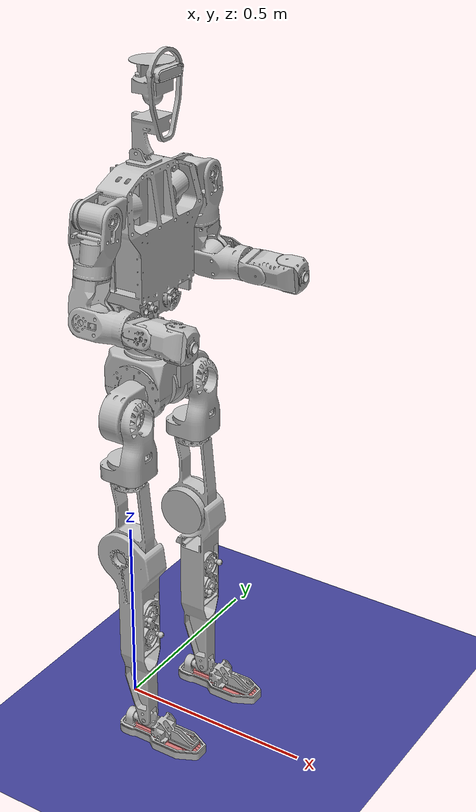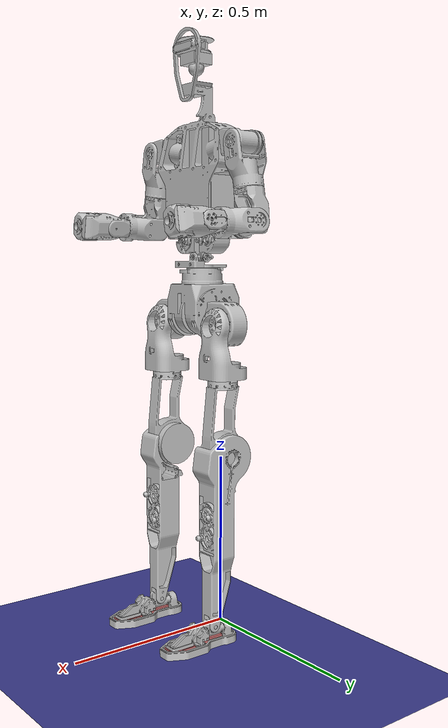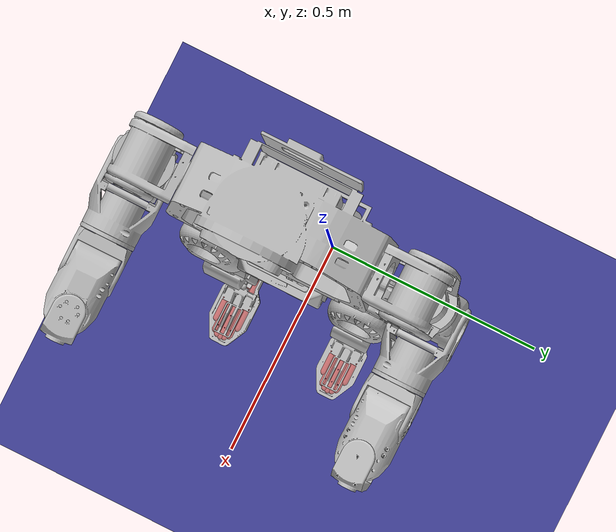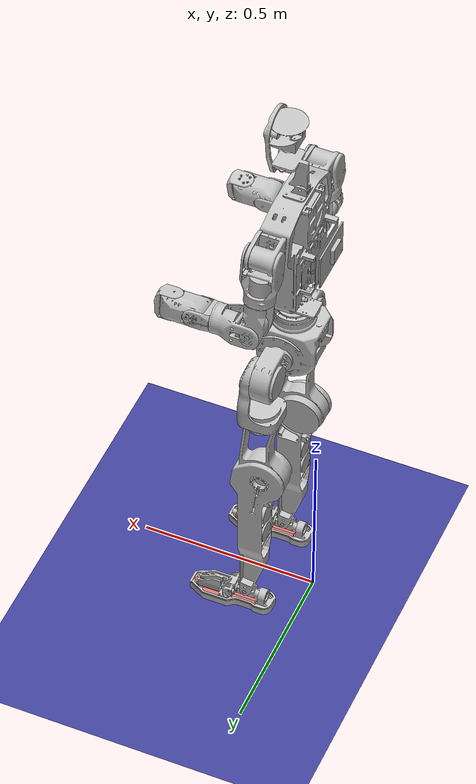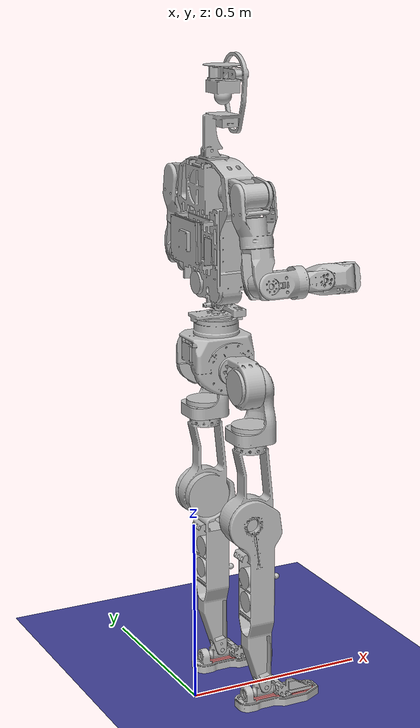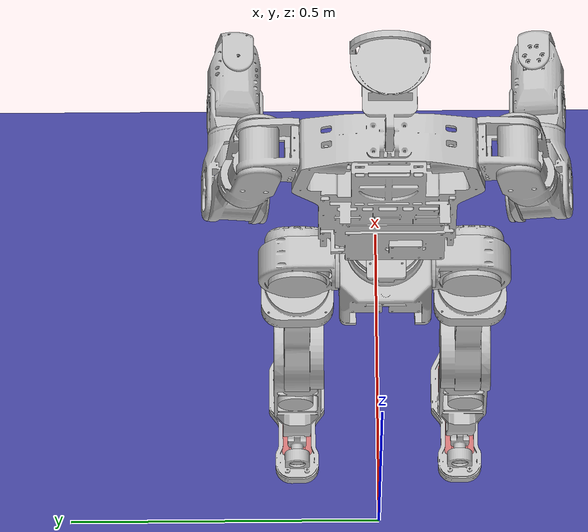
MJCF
<mujoco model="modelae_0624 scene">
  <include file="0624.xml"/>
  <visual>
    <headlight diffuse="0.6 0.6 0.6" ambient="0.3 0.3 0.3" specular="0 0 0"/>
    <rgba haze="0.15 0.25 0.35 1"/>
  </visual>
  <worldbody>
    <light pos="0 0 1.5" dir="0 0 -1" directional="true"/>
  </worldbody>
</mujoco>

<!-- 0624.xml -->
<mujoco model="0624wholebodyURDF">
  <compiler angle="radian" meshdir="meshes/" balanceinertia="true" autolimits="true"/>

  <option timestep="0.005" iterations="10" ls_iterations="20" solver="Newton" gravity="0 0 -9.81" integrator="implicitfast" ccd_iterations="50">
    <flag contact="enable" energy="enable" frictionloss="enable"/>
  </option>

  <size njmax="640" nconmax="500" nstack="500000"/>
  <visual>
    <headlight diffuse="0.6 0.6 0.6" ambient="0.3 0.3 0.3" specular="0 0 0"/>
    <rgba haze="0.15 0.25 0.35 1"/>
    <global azimuth="150" elevation="-20"/>
  </visual>

  <default>
    <pair solref="0.005 1" solimp="0.95 0.99 0.001"/>
    <joint stiffness="0" damping="0.1" frictionloss="0.02" armature="0.03"/>
  </default>

  <asset>
    <texture name="skybox" type="skybox" builtin="gradient" rgb1=".2 .3 .4" rgb2=".1 .15 0.2" width="512" height="3072"/>
    <texture type="2d" name="groundplane" builtin="checker" mark="edge" rgb1=".2 .2 .6" rgb2=".3 .3 .6"
             markrgb="0.0 0.0 0.0" width="800" height="800"/>
    <material name="groundplane" texture="groundplane" texuniform="true" texrepeat="5 5" reflectance="0"/>
    <mesh name="pelvis_link" content_type="model/stl" file="meshes/pelvis_link.STL"/>
    <mesh name="imu_in_pelvis_link" content_type="model/stl" file="meshes/imu_in_pelvis_link.STL"/>
    <mesh name="left_hip_pitch_link" content_type="model/stl" file="meshes/left_hip_pitch_link.STL"/>
    <mesh name="left_hip_roll_link" content_type="model/stl" file="meshes/left_hip_roll_link.STL"/>
    <mesh name="left_hip_yaw_link" content_type="model/stl" file="meshes/left_hip_yaw_link.STL"/>
    <mesh name="left_knee_link" content_type="model/stl" file="meshes/left_knee_link.STL"/>
    <mesh name="left_ankle_pitch_link" content_type="model/stl" file="meshes/left_ankle_pitch_link.STL"/>
    <mesh name="left_ankle_roll_link" content_type="model/stl" file="meshes/left_ankle_roll_link.STL"/>
    <mesh name="right_hip_pitch_link" content_type="model/stl" file="meshes/right_hip_pitch_link.STL"/>
    <mesh name="right_hip_roll_link" content_type="model/stl" file="meshes/right_hip_roll_link.STL"/>
    <mesh name="right_hip_yaw_link" content_type="model/stl" file="meshes/right_hip_yaw_link.STL"/>
    <mesh name="right_knee_link" content_type="model/stl" file="meshes/right_knee_link.STL"/>
    <mesh name="right_ankle_pitch_link" content_type="model/stl" file="meshes/right_ankle_pitch_link.STL"/>
    <mesh name="right_ankle_roll_link" content_type="model/stl" file="meshes/right_ankle_roll_link.STL"/>
    <mesh name="waist_yaw_link" content_type="model/stl" file="meshes/waist_yaw_link.STL"/>
    <mesh name="waist_roll_link" content_type="model/stl" file="meshes/waist_roll_link.STL"/>
    <mesh name="waist_pitch_link" content_type="model/stl" file="meshes/waist_pitch_link.STL"/>
    <mesh name="left_shoulder_pitch_link" content_type="model/stl" file="meshes/left_shoulder_pitch_link.STL"/>
    <mesh name="left_shoulder_roll_link" content_type="model/stl" file="meshes/left_shoulder_roll_link.STL"/>
    <mesh name="left_shoulder_yaw_link" content_type="model/stl" file="meshes/left_shoulder_yaw_link.STL"/>
    <mesh name="left_elbow_link" content_type="model/stl" file="meshes/left_elbow_link.STL"/>
    <mesh name="left_wrist_roll_link" content_type="model/stl" file="meshes/left_wrist_roll_link.STL"/>
    <mesh name="left_wrist_pitch_link" content_type="model/stl" file="meshes/left_wrist_pitch_link.STL"/>
    <mesh name="left_wrist_yaw_link" content_type="model/stl" file="meshes/left_wrist_yaw_link.STL"/>
    <mesh name="right_shoulder_pitch_link" content_type="model/stl" file="meshes/right_shoulder_pitch_link.STL"/>
    <mesh name="right_shoulder_roll_link" content_type="model/stl" file="meshes/right_shoulder_roll_link.STL"/>
    <mesh name="right_shoulder_yaw_link" content_type="model/stl" file="meshes/right_shoulder_yaw_link.STL"/>
    <mesh name="right_elbow_link" content_type="model/stl" file="meshes/right_elbow_link.STL"/>
    <mesh name="right_wrist_roll_link" content_type="model/stl" file="meshes/right_wrist_roll_link.STL"/>
    <mesh name="right_wrist_pitch_link" content_type="model/stl" file="meshes/right_wrist_pitch_link.STL"/>
    <mesh name="right_wrist_yaw_link" content_type="model/stl" file="meshes/right_wrist_yaw_link.STL"/>
  </asset>

  <worldbody>
    <light pos="0 0 3" dir="0 0 -1" directional="true" diffuse="0.6 0.6 0.6" specular=".3 .3 .3"/>
    <geom name="floor" type="plane" pos="0 0 0" size="0 0 0.05" material="groundplane"/>
    <body name="pelvis_link" pos="0 0 1.0">
      <joint name="root" type="free"/>
      <inertial pos="-0.004 0 0.038" quat="-0.04494823 0 0.9989893 0" mass="7.15" diaginertia="0.04418034 0.042 0.02181966"/>
      <geom type="mesh" contype="0" conaffinity="0" group="1" density="0" rgba="0.75294 0.75294 0.75294 1" mesh="pelvis_link"/>
      <geom name="pelvis_link_collision" type="mesh" rgba="0.75294 0.75294 0.75294 1" mesh="pelvis_link" contype="1" conaffinity="1" condim="1"/>
      <site name="imu_base" pos="0 0 0" size="0.01"/>
      <geom type="mesh" contype="0" conaffinity="0" group="1" density="0" rgba="0.75294 0.75294 0.75294 1" mesh="imu_in_pelvis_link"/>
      <body name="left_hip_pitch_link" pos="0.0766 0.0686 -0.0676" quat="1 0 0 0">
        <inertial pos="0.003 0.063 -0.024" quat="0.8314696 -0.5555702 0 0" mass="2.333" diaginertia="0.015 0.01365685 0.002343146"/>
        <joint name="left_hip_pitch_joint" pos="0 0 0" axis="0 1 0" range="-2.88 2.618" armature="0.01017752" actuatorfrcrange="-235 235" damping="0.01" frictionloss="0.05"/>
        <geom type="mesh" contype="0" conaffinity="0" group="1" density="0" rgba="0.75294 0.75294 0.75294 1" mesh="left_hip_pitch_link"/>
        <geom name="left_hip_pitch_link_collision" type="mesh" rgba="0.75294 0.75294 0.75294 1" mesh="left_hip_pitch_link" contype="16" conaffinity="16" condim="1"/>
        <body name="left_hip_roll_link" pos="0.00675 0.065 -0.027" quat="1 0 0 0">
          <inertial pos="0.026 0 -0.105" quat="-0.08708231 0 0.9962011 0" mass="2.854" diaginertia="0.04105705 0.041 0.00594295"/>
          <joint name="left_hip_roll_joint" pos="0 0 0" axis="1 0 0" range="-0.175 2.617" armature="0.02510193" actuatorfrcrange="-235 235" damping="0.01" frictionloss="0.05"/>
          <geom type="mesh" contype="0" conaffinity="0" group="1" density="0" rgba="0.75294 0.75294 0.75294 1" mesh="left_hip_roll_link"/>
          <geom name="left_hip_roll_link_collision" type="mesh" rgba="0.75294 0.75294 0.75294 1" mesh="left_hip_roll_link" contype="1" conaffinity="31" condim="1"/>
          <body name="left_hip_yaw_link" pos="0.01675 -0.0001 -0.12525" quat="1 0 0 0">
            <inertial pos="-0.006 -0.007 -0.212" quat="0.02395095 -0.6747399 0.7376603 0.003108807" mass="3.256" diaginertia="0.1672383 0.1651393 0.004622412"/>
            <joint name="left_hip_yaw_joint" pos="0 0 0" axis="0 0 1" range="-1.57 1.57" armature="0.01017752" actuatorfrcrange="-150 150" damping="0.01" frictionloss="0.05"/>
            <geom type="mesh" contype="0" conaffinity="0" group="1" density="0" rgba="0.75294 0.75294 0.75294 1" mesh="left_hip_yaw_link"/>
            <geom name="left_hip_yaw_link_collision" type="mesh" rgba="0.75294 0.75294 0.75294 1" mesh="left_hip_yaw_link" contype="1" conaffinity="31" condim="1"/>
            <body name="left_knee_link" pos="-0.009 -0.01035 -0.24375" quat="1 0 0 0">
              <inertial pos="0.035 0.012 -0.183" quat="-0.07213949 -0.4707565 0.8791455 0.01694985" mass="3.727" diaginertia="0.1855931 0.1812863 0.006120552"/>
              <joint name="left_knee_joint" pos="0 0 0" axis="0 1 0" range="0 2.617" armature="0.02510193" actuatorfrcrange="-235 235" damping="0.01" frictionloss="0.05"/>
              <geom type="mesh" contype="0" conaffinity="0" group="1" density="0" rgba="0.75294 0.75294 0.75294 1" mesh="left_knee_link"/>
              <geom name="left_knee_link_collision" type="mesh" rgba="0.75294 0.75294 0.75294 1" mesh="left_knee_link" contype="1" conaffinity="31" condim="1"/>
              <body name="left_ankle_pitch_link" pos="0.048044 0.0092998 -0.475" quat="1 0 0 0">
                <inertial pos="-0.005 0 -0.012" quat="-0.4860128 -0.5136064 0.5136065 0.4860128" mass="0.415" diaginertia="0.0002142 0.0001947975 6.416946e-05"/>
                <joint name="left_ankle_pitch_joint" pos="0 0 0" axis="0 1 0" range="-0.908 0.524" armature="0.00721945" actuatorfrcrange="-55 55" damping="0.01" frictionloss="0.05"/>
                <geom type="mesh" contype="0" conaffinity="0" group="1" density="0" rgba="0.75294 0.75294 0.75294 1" mesh="left_ankle_pitch_link"/>
                <geom name="left_ankle_pitch_link_collision" type="mesh" rgba="0.75294 0.75294 0.75294 1" mesh="left_ankle_pitch_link" contype="1" conaffinity="31" condim="1"/>
                <body name="left_ankle_roll_link" pos="0 -0.00034979 -0.016" quat="1 0 0 0">
                  <inertial pos="0.046 0 -0.015" quat="0.6205832 0 -0.7841406 0" mass="0.999" diaginertia="0.005236068 0.005 0.000763932"/>
                  <joint name="left_ankle_roll_joint" pos="0 0 0" axis="1 0 0" range="-0.349 0.349" armature="0.00721945" actuatorfrcrange="-55 55" damping="0.01" frictionloss="0.05"/>
                  <geom type="mesh" contype="0" conaffinity="0" group="1" density="0" rgba="0.75294 0.75294 0.75294 1" mesh="left_ankle_roll_link"/>
                  <geom name="left_foot1" type="capsule" size="0.01" fromto="0.1155 -0.026 -0.028 0.0655 -0.026 -0.028" contype="1" conaffinity="1" condim="3" priority="1" friction="0.6 0.6 0.6" rgba="0.9 0.3 0.3 0.6"/>
                  <geom name="left_foot2" type="capsule" size="0.01" fromto="-0.0285 -0.0173 -0.028 0.1385 -0.0173 -0.028" contype="1" conaffinity="1" condim="3" priority="1" friction="0.6 0.6 0.6" rgba="0.9 0.3 0.3 0.6"/>
                  <geom name="left_foot3" type="capsule" size="0.01" fromto="-0.0365 -0.0087 -0.028 0.1455 -0.0087 -0.028" contype="1" conaffinity="1" condim="3" priority="1" friction="0.6 0.6 0.6" rgba="0.9 0.3 0.3 0.6"/>
                  <geom name="left_foot4" type="capsule" size="0.01" fromto="-0.0385 0 -0.028 0.1475 0 -0.028" contype="1" conaffinity="1" condim="3" priority="1" friction="0.6 0.6 0.6" rgba="0.9 0.3 0.3 0.6"/>
                  <geom name="left_foot5" type="capsule" size="0.01" fromto="-0.0365 0.0087 -0.028 0.1455 0.0087 -0.028" contype="1" conaffinity="1" condim="3" priority="1" friction="0.6 0.6 0.6" rgba="0.9 0.3 0.3 0.6"/>
                  <geom name="left_foot6" type="capsule" size="0.01" fromto="-0.0285 0.0173 -0.028 0.1385 0.0173 -0.028" contype="1" conaffinity="1" condim="3" priority="1" friction="0.6 0.6 0.6" rgba="0.9 0.3 0.3 0.6"/>
                  <geom name="left_foot7" type="capsule" size="0.01" fromto="0.1155 0.026 -0.028 0.0655 0.026 -0.028" contype="1" conaffinity="1" condim="3" priority="1" friction="0.6 0.6 0.6" rgba="0.9 0.3 0.3 0.6"/>
                  <site name="left_foot" pos="0.043 0 -0.028" size="0.005"/>

                </body>
              </body>
            </body>
          </body>
        </body>
      </body>
      <body name="right_hip_pitch_link" pos="0.0766 -0.0686 -0.0676" quat="1 0 0 0">
        <inertial pos="0.003 -0.063 -0.024" quat="0.8314696 0.5555702 0 0" mass="2.334" diaginertia="0.015 0.01365685 0.002343146"/>
        <joint name="right_hip_pitch_joint" pos="0 0 0" axis="0 1 0" range="-2.88 2.618" armature="0.01017752" actuatorfrcrange="-235 235" damping="0.01" frictionloss="0.05"/>
        <geom type="mesh" contype="0" conaffinity="0" group="1" density="0" rgba="0.75294 0.75294 0.75294 1" mesh="right_hip_pitch_link"/>
        <geom name="right_hip_pitch_link_collision" type="mesh" rgba="0.75294 0.75294 0.75294 1" mesh="right_hip_pitch_link" contype="16" conaffinity="16" condim="1"/>
        <body name="right_hip_roll_link" pos="0.00675 -0.065 -0.027" quat="1 0 0 0">
          <inertial pos="0.026 0 -0.105" quat="-0.08708231 0 0.9962011 0" mass="2.854" diaginertia="0.04105705 0.041 0.00594295"/>
          <joint name="right_hip_roll_joint" pos="0 0 0" axis="1 0 0" range="-2.617 0.175" armature="0.02510193" actuatorfrcrange="-235 235" damping="0.01" frictionloss="0.05"/>
          <geom type="mesh" contype="0" conaffinity="0" group="1" density="0" rgba="0.75294 0.75294 0.75294 1" mesh="right_hip_roll_link"/>
          <geom name="right_hip_roll_link_collision" type="mesh" rgba="0.75294 0.75294 0.75294 1" mesh="right_hip_roll_link" contype="1" conaffinity="31" condim="1"/>
          <body name="right_hip_yaw_link" pos="0.01675 0 -0.12525" quat="1 0 0 0">
            <inertial pos="-0.006 0.007 -0.212" quat="0.02395095 0.6747399 0.7376603 -0.003108807" mass="3.256" diaginertia="0.1672383 0.1651393 0.004622412"/>
            <joint name="right_hip_yaw_joint" pos="0 0 0" axis="0 0 1" range="-1.57 1.57" armature="0.01017752" actuatorfrcrange="-150 150" damping="0.01" frictionloss="0.05"/>
            <geom type="mesh" contype="0" conaffinity="0" group="1" density="0" rgba="0.75294 0.75294 0.75294 1" mesh="right_hip_yaw_link"/>
            <geom name="right_hip_yaw_link_collision" type="mesh" rgba="0.75294 0.75294 0.75294 1" mesh="right_hip_yaw_link" contype="1" conaffinity="31" condim="1"/>
            <body name="right_knee_link" pos="-0.009 0.01035 -0.24375" quat="1 0 0 0">
              <inertial pos="0.035 -0.012 -0.183" quat="0.878582 -0.0169415 0.07172199 -0.4718714" mass="3.727" diaginertia="0.1865809 0.1822768 0.006142277"/>
              <joint name="right_knee_joint" pos="0 0 0" axis="0 1 0" range="0 2.617" armature="0.02510193" actuatorfrcrange="-235 235" damping="0.01" frictionloss="0.05"/>
              <geom type="mesh" contype="0" conaffinity="0" group="1" density="0" rgba="0.75294 0.75294 0.75294 1" mesh="right_knee_link"/>
              <geom name="right_knee_link_collision" type="mesh" rgba="0.75294 0.75294 0.75294 1" mesh="right_knee_link" contype="1" conaffinity="31" condim="1"/>
              <body name="right_ankle_pitch_link" pos="0.048044 -0.00895 -0.475" quat="1 0 0 0">
                <inertial pos="-0.005 0 -0.012" quat="-0.4860116 -0.5136076 0.5136076 0.4860116" mass="0.415" diaginertia="0.00021421 0.0001948176 6.420042e-05"/>
                <joint name="right_ankle_pitch_joint" pos="0 0 0" axis="0 1 0" range="-0.908 0.524" armature="0.00721945" actuatorfrcrange="-55 55" damping="0.01" frictionloss="0.05"/>
                <geom type="mesh" contype="0" conaffinity="0" group="1" density="0" rgba="0.75294 0.75294 0.75294 1" mesh="right_ankle_pitch_link"/>
                <geom name="right_ankle_pitch_link_collision" type="mesh" rgba="0.75294 0.75294 0.75294 1" mesh="right_ankle_pitch_link" contype="1" conaffinity="31" condim="1"/>
                <body name="right_ankle_roll_link" pos="0 0 -0.016" quat="1 0 0 0">
                  <inertial pos="0.046 0 -0.015" quat="0.6205832 0 -0.7841406 0" mass="0.999" diaginertia="0.005236068 0.005 0.000763932"/>
                  <joint name="right_ankle_roll_joint" pos="0 0 0" axis="1 0 0" range="-0.349 0.349" armature="0.00721945" actuatorfrcrange="-55 55" damping="0.01" frictionloss="0.05"/>
                  <geom type="mesh" contype="0" conaffinity="0" group="1" density="0" rgba="0.75294 0.75294 0.75294 1" mesh="right_ankle_roll_link"/>
                  <geom name="right_foot1" type="capsule" size="0.01" fromto="0.1155 -0.026 -0.028 0.0655 -0.026 -0.028" contype="1" conaffinity="1" condim="3" priority="1" friction="0.6 0.6 0.6" rgba="0.9 0.3 0.3 0.6"/>
                  <geom name="right_foot2" type="capsule" size="0.01" fromto="-0.0285 -0.0173 -0.028 0.1385 -0.0173 -0.028" contype="1" conaffinity="1" condim="3" priority="1" friction="0.6 0.6 0.6" rgba="0.9 0.3 0.3 0.6"/>
                  <geom name="right_foot3" type="capsule" size="0.01" fromto="-0.0365 -0.0087 -0.028 0.1455 -0.0087 -0.028" contype="1" conaffinity="1" condim="3" priority="1" friction="0.6 0.6 0.6" rgba="0.9 0.3 0.3 0.6"/>
                  <geom name="right_foot4" type="capsule" size="0.01" fromto="-0.0385 0 -0.028 0.1475 0 -0.028" contype="1" conaffinity="1" condim="3" priority="1" friction="0.6 0.6 0.6" rgba="0.9 0.3 0.3 0.6"/>
                  <geom name="right_foot5" type="capsule" size="0.01" fromto="-0.0365 0.0087 -0.028 0.1455 0.0087 -0.028" contype="1" conaffinity="1" condim="3" priority="1" friction="0.6 0.6 0.6" rgba="0.9 0.3 0.3 0.6"/>
                  <geom name="right_foot6" type="capsule" size="0.01" fromto="-0.0285 0.0173 -0.028 0.1385 0.0173 -0.028" contype="1" conaffinity="1" condim="3" priority="1" friction="0.6 0.6 0.6" rgba="0.9 0.3 0.3 0.6"/>
                  <geom name="right_foot7" type="capsule" size="0.01" fromto="0.1155 0.026 -0.028 0.0655 0.026 -0.028" contype="1" conaffinity="1" condim="3" priority="1" friction="0.6 0.6 0.6" rgba="0.9 0.3 0.3 0.6"/>
                  <site name="right_foot" pos="0.043 0 -0.028" size="0.005"/>

                </body>
              </body>
            </body>
          </body>
        </body>
      </body>
      <body name="waist_yaw_link" pos="0.0696 0 0.0409" quat="1 0 0 0">
        <inertial pos="0.005 0 0.034" quat="0.7071068 0 -0.7071068 0" mass="0.34" diaginertia="0.001 0.001 0.001"/>
        <joint name="waist_yaw_joint" pos="0 0 0" axis="0 0 1" range="-2.618 2.618" armature="0.01017752" actuatorfrcrange="-150 150" damping="0.01" frictionloss="0.05"/>
        <geom type="mesh" contype="0" conaffinity="0" group="1" density="0" rgba="0.75294 0.75294 0.75294 1" mesh="waist_yaw_link"/>
        <geom name="waist_yaw_link_collision" type="mesh" rgba="0.75294 0.75294 0.75294 1" mesh="waist_yaw_link" contype="2" conaffinity="2" condim="1"/>
        <body name="waist_roll_link" pos="-0.002 0 0.0525" quat="1 0 0 0">
          <inertial pos="0.017 0 0.005" quat="0.7071068 5.240447e-09 -0.7071068 5.240447e-09" mass="0.308" diaginertia="2.6154e-05 2.362e-05 5.7185e-06"/>
          <joint name="waist_roll_joint" pos="0 0 0" axis="1 0 0" range="-0.0349 0.0349" armature="0.00721945" actuatorfrcrange="-25 25" damping="0.01" frictionloss="0.05"/>
          <geom type="mesh" contype="0" conaffinity="0" group="1" density="0" rgba="0.75294 0.75294 0.75294 1" mesh="waist_roll_link"/>
          <geom name="waist_roll_link_collision" type="mesh" rgba="0.75294 0.75294 0.75294 1" mesh="waist_roll_link" contype="4" conaffinity="4" condim="1"/>
          <body name="waist_pitch_link" pos="0 0 0" quat="1 0 0 0">
            <inertial pos="0.004 0.003 0.216" quat="0.009259429 -0.001195696 0.9999455 0.004669881" mass="15.372" diaginertia="1.007315 0.9430745 0.08861041"/>
            <joint name="waist_pitch_joint" pos="0 0 0" axis="0 1 0" range="-0.0524 0.0524" armature="0.00721945" actuatorfrcrange="-25 25" damping="0.01" frictionloss="0.05"/>
            <geom type="mesh" contype="0" conaffinity="0" group="1" density="0" rgba="0.75294 0.75294 0.75294 1" mesh="waist_pitch_link"/>
            <geom name="waist_pitch_link_collision" type="mesh" rgba="0.75294 0.75294 0.75294 1" mesh="waist_pitch_link" contype="8" conaffinity="8" condim="1"/>
            <body name="left_shoulder_pitch_link" pos="0.007 0.13588 0.30771" quat="0.9961948 0.08715429 0 0">
              <inertial pos="0 0.052 -0.01" quat="0.545231 -0.4502478 -0.4502478 -0.545231" mass="1.573" diaginertia="0.006192582 0.005 0.0008074176"/>
              <joint name="left_shoulder_pitch_joint" pos="0 0 0" axis="0 1 0" range="-3.14 3.14" armature="0.003609725" actuatorfrcrange="-90 90" damping="0.01" frictionloss="0.05"/>
              <geom type="mesh" contype="0" conaffinity="0" group="1" density="0" rgba="0.75294 0.75294 0.75294 1" mesh="left_shoulder_pitch_link"/>
              <geom name="left_shoulder_pitch_link_collision" type="mesh" rgba="0.75294 0.75294 0.75294 1" mesh="left_shoulder_pitch_link" contype="1" conaffinity="31" condim="1"/>
              <body name="left_shoulder_roll_link" pos="0.0015 0.0545 -0.010182" quat="1 0 0 0">
                <inertial pos="-0.002 0 -0.08" quat="1 0 0 0" mass="1.075" diaginertia="0.009 0.009 0.001"/>
                <joint name="left_shoulder_roll_joint" pos="0 0 0" axis="1 0 0" range="-0.262 3.14" armature="0.003609725" actuatorfrcrange="-90 90" damping="0.01" frictionloss="0.05"/>
                <geom type="mesh" contype="0" conaffinity="0" group="1" density="0" rgba="0.75294 0.75294 0.75294 1" mesh="left_shoulder_roll_link"/>
                <geom name="left_shoulder_roll_link_collision" type="mesh" rgba="0.75294 0.75294 0.75294 1" mesh="left_shoulder_roll_link" contype="1" conaffinity="31" condim="1"/>
                <body name="left_shoulder_yaw_link" pos="-0.001 0 -0.126" quat="1 0 0 0">
                  <inertial pos="0.008 -0.002 -0.084" quat="-0.08035093 0 0.9967666 0" mass="0.776" diaginertia="0.007162278 0.006 0.0008377223"/>
                  <joint name="left_shoulder_yaw_joint" pos="0 0 0" axis="0 0 1" range="-3.14 3.14" armature="0.003609725" actuatorfrcrange="-50 50" damping="0.01" frictionloss="0.05"/>
                  <geom type="mesh" contype="0" conaffinity="0" group="1" density="0" rgba="0.75294 0.75294 0.75294 1" mesh="left_shoulder_yaw_link"/>
                  <geom name="left_shoulder_yaw_link_collision" type="mesh" rgba="0.75294 0.75294 0.75294 1" mesh="left_shoulder_yaw_link" contype="1" conaffinity="31" condim="1"/>
                  <body name="left_elbow_link" pos="0.0076328 -0.0005 -0.095865" quat="1 0 0 0">
                    <inertial pos="0.067 -0.004 0.001" quat="0.7071068 0 -0.7071068 0" mass="1.036" diaginertia="0.006 0.006 0.001"/>
                    <joint name="left_elbow_joint" pos="0 0 0" axis="0 1 0" range="-1.05 2.09" armature="0.003609725" actuatorfrcrange="-50 50" damping="0.01" frictionloss="0.05"/>
                    <geom type="mesh" contype="0" conaffinity="0" group="1" density="0" rgba="0.75294 0.75294 0.75294 1" mesh="left_elbow_link"/>
                    <geom name="left_elbow_link_collision" type="mesh" rgba="0.75294 0.75294 0.75294 1" mesh="left_elbow_link" contype="1" conaffinity="31" condim="1"/>
                    <body name="left_wrist_roll_link" pos="0.10837 -0.002 0.0013652" quat="1 0 0 0">
                      <inertial pos="0.018 -0.002 0" quat="0.5184612 -0.4806292 -0.5184599 -0.4810333" mass="0.229" diaginertia="0.00025783 0.0002254131 0.0001311569"/>
                      <joint name="left_wrist_roll_joint" pos="0 0 0" axis="1 0 0" range="-3.14 3.14" armature="0.003609725" actuatorfrcrange="-25 25" damping="0.01" frictionloss="0.05"/>
                      <geom type="mesh" contype="0" conaffinity="0" group="1" density="0" rgba="0.75294 0.75294 0.75294 1" mesh="left_wrist_roll_link"/>
                      <geom name="left_wrist_roll_link_collision" type="mesh" rgba="0.75294 0.75294 0.75294 1" mesh="left_wrist_roll_link" contype="1" conaffinity="31" condim="1"/>
                      <body name="left_wrist_pitch_link" pos="0.049 0 0" quat="1 0 0 0">
                        <inertial pos="0.032 0.001 0" quat="0.7071068 0 -0.7071068 0" mass="1.669" diaginertia="0.004 0.004 0.001"/>
                        <joint name="left_wrist_pitch_joint" pos="0 0 0" axis="0 1 0" range="-0.785 0.785" armature="0.00425" actuatorfrcrange="-25 25" damping="0.01" frictionloss="0.05"/>
                        <geom type="mesh" contype="0" conaffinity="0" group="1" density="0" rgba="0.75294 0.75294 0.75294 1" mesh="left_wrist_pitch_link"/>
                        <geom name="left_wrist_pitch_link_collision" type="mesh" rgba="0.75294 0.75294 0.75294 1" mesh="left_wrist_pitch_link" contype="1" conaffinity="31" condim="1"/>
                        <body name="left_wrist_yaw_link" pos="0.064 0.001 0.001" quat="1 0 0 0">
                          <inertial pos="0.025 0 0" quat="0.9534378 -4.13465e-07 0.3015898 -1.087079e-05" mass="0.12" diaginertia="8.129253e-05 7.4877e-05 4.289747e-05"/>
                          <joint name="left_wrist_yaw_joint" pos="0 0 0" axis="0 0 1" range="-1.57 1.57" armature="0.00425" actuatorfrcrange="-25 25" damping="0.01" frictionloss="0.05"/>
                          <geom type="mesh" contype="0" conaffinity="0" group="1" density="0" rgba="0.75294 0.75294 0.75294 1" mesh="left_wrist_yaw_link"/>
                          <geom name="left_wrist_yaw_link_collision" type="mesh" rgba="0.75294 0.75294 0.75294 1" mesh="left_wrist_yaw_link" contype="1" conaffinity="31" condim="1"/>

                        </body>
                      </body>
                    </body>
                  </body>
                </body>
              </body>
            </body>
            <body name="right_shoulder_pitch_link" pos="0.007 -0.13588 0.30771" quat="0.9961948 -0.08715429 0 0">
              <inertial pos="0 -0.052 -0.01" quat="-0.4502478 0.545231 0.545231 0.4502478" mass="1.573" diaginertia="0.006192582 0.005 0.0008074176"/>
              <joint name="right_shoulder_pitch_joint" pos="0 0 0" axis="0 1 0" range="-3.14 3.14" armature="0.003609725" actuatorfrcrange="-90 90" damping="0.01" frictionloss="0.05"/>
              <geom type="mesh" contype="0" conaffinity="0" group="1" density="0" rgba="0.75294 0.75294 0.75294 1" mesh="right_shoulder_pitch_link"/>
              <geom name="right_shoulder_pitch_link_collision" type="mesh" rgba="0.75294 0.75294 0.75294 1" mesh="right_shoulder_pitch_link" contype="1" conaffinity="31" condim="1"/>
              <body name="right_shoulder_roll_link" pos="0.0015 -0.0545 -0.010182" quat="1 0 0 0">
                <inertial pos="-0.002 0 -0.08" quat="1 0 0 0" mass="1.075" diaginertia="0.009 0.009 0.001"/>
                <joint name="right_shoulder_roll_joint" pos="0 0 0" axis="1 0 0" range="-3.14 0.262" armature="0.003609725" actuatorfrcrange="-90 90" damping="0.01" frictionloss="0.05"/>
                <geom type="mesh" contype="0" conaffinity="0" group="1" density="0" rgba="0.75294 0.75294 0.75294 1" mesh="right_shoulder_roll_link"/>
                <geom name="right_shoulder_roll_link_collision" type="mesh" rgba="0.75294 0.75294 0.75294 1" mesh="right_shoulder_roll_link" contype="1" conaffinity="31" condim="1"/>
                <body name="right_shoulder_yaw_link" pos="-0.001 0 -0.126" quat="1 0 0 0">
                  <inertial pos="0.008 0.002 -0.084" quat="-0.08035093 0 0.9967666 0" mass="0.776" diaginertia="0.007162278 0.006 0.0008377223"/>
                  <joint name="right_shoulder_yaw_joint" pos="0 0 0" axis="0 0 1" range="-3.14 3.14" armature="0.003609725" actuatorfrcrange="-50 50" damping="0.01" frictionloss="0.05"/>
                  <geom type="mesh" contype="0" conaffinity="0" group="1" density="0" rgba="0.75294 0.75294 0.75294 1" mesh="right_shoulder_yaw_link"/>
                  <geom name="right_shoulder_yaw_link_collision" type="mesh" rgba="0.75294 0.75294 0.75294 1" mesh="right_shoulder_yaw_link" contype="1" conaffinity="31" condim="1"/>
                  <body name="right_elbow_link" pos="0.01 -0.0005 -0.0945" quat="1 0 0 0">
                    <inertial pos="0.064 0.003 0" quat="0.7071068 0 -0.7071068 0" mass="1.036" diaginertia="0.006 0.006 0.001"/>
                    <joint name="right_elbow_joint" pos="0 0 0" axis="0 1 0" range="-1.05 2.09" armature="0.003609725" actuatorfrcrange="-50 50" damping="0.01" frictionloss="0.05"/>
                    <geom type="mesh" contype="0" conaffinity="0" group="1" density="0" rgba="0.75294 0.75294 0.75294 1" mesh="right_elbow_link"/>
                    <geom name="right_elbow_link_collision" type="mesh" rgba="0.75294 0.75294 0.75294 1" mesh="right_elbow_link" contype="1" conaffinity="31" condim="1"/>
                    <body name="right_wrist_roll_link" pos="0.106 0.001 0" quat="1 0 0 0">
                      <inertial pos="0.018 0.002 0" quat="0.5184601 0.4810331 -0.5184609 0.4806293" mass="0.229" diaginertia="0.00025783 0.0002254131 0.0001311569"/>
                      <joint name="right_wrist_roll_joint" pos="0 0 0" axis="1 0 0" range="-3.14 3.14" armature="0.003609725" actuatorfrcrange="-25 25" damping="0.01" frictionloss="0.05"/>
                      <geom type="mesh" contype="0" conaffinity="0" group="1" density="0" rgba="0.75294 0.75294 0.75294 1" mesh="right_wrist_roll_link"/>
                      <geom name="right_wrist_roll_link_collision" type="mesh" rgba="0.75294 0.75294 0.75294 1" mesh="right_wrist_roll_link" contype="1" conaffinity="31" condim="1"/>
                      <body name="right_wrist_pitch_link" pos="0.049 0 0" quat="1 0 0 0">
                        <inertial pos="0.032 -0.001 0" quat="0.7071068 0 -0.7071068 0" mass="1.669" diaginertia="0.004 0.004 0.001"/>
                        <joint name="right_wrist_pitch_joint" pos="0 0 0" axis="0 1 0" range="-0.785 0.785" armature="0.00425" actuatorfrcrange="-25 25" damping="0.01" frictionloss="0.05"/>
                        <geom type="mesh" contype="0" conaffinity="0" group="1" density="0" rgba="0.75294 0.75294 0.75294 1" mesh="right_wrist_pitch_link"/>
                        <geom name="right_wrist_pitch_link_collision" type="mesh" rgba="0.75294 0.75294 0.75294 1" mesh="right_wrist_pitch_link" contype="1" conaffinity="31" condim="1"/>
                        <body name="right_wrist_yaw_link" pos="0.064 -0.001 -0.001" quat="1 0 0 0">
                          <inertial pos="0.025 0 0" quat="0.9534378 -4.246374e-07 -0.3015898 1.11514e-05" mass="0.12" diaginertia="8.129253e-05 7.4877e-05 4.289747e-05"/>
                          <joint name="right_wrist_yaw_joint" pos="0 0 0" axis="0 0 1" range="-1.57 1.57" armature="0.00425" actuatorfrcrange="-25 25" damping="0.01" frictionloss="0.05"/>
                          <geom type="mesh" contype="0" conaffinity="0" group="1" density="0" rgba="0.75294 0.75294 0.75294 1" mesh="right_wrist_yaw_link"/>
                          <geom name="right_wrist_yaw_link_collision" type="mesh" rgba="0.75294 0.75294 0.75294 1" mesh="right_wrist_yaw_link" contype="1" conaffinity="31" condim="1"/>

                        </body>
                      </body>
                    </body>
                  </body>
                </body>
              </body>
            </body>
          </body>
        </body>
      </body>
    </body>
  </worldbody>

  <sensor>
    <framequat name="orientation" objtype="site" noise="0.001" objname="imu_base"/>
    <accelerometer name="linear-acceleration" site="imu_base" noise="0.005" cutoff="157"/>
    <gyro name="angular-velocity" site="imu_base" noise="0.005" cutoff="34.9"/>
    <gyro name="imu_ang_vel" site="imu_base"/>
    <velocimeter name="imu_lin_vel" site="imu_base"/>
    <jointpos name="q_left_hip_pitch_joint" joint="left_hip_pitch_joint"/>
    <jointvel name="dq_left_hip_pitch_joint" joint="left_hip_pitch_joint"/>
    <jointpos name="q_left_hip_roll_joint" joint="left_hip_roll_joint"/>
    <jointvel name="dq_left_hip_roll_joint" joint="left_hip_roll_joint"/>
    <jointpos name="q_left_hip_yaw_joint" joint="left_hip_yaw_joint"/>
    <jointvel name="dq_left_hip_yaw_joint" joint="left_hip_yaw_joint"/>
    <jointpos name="q_left_knee_joint" joint="left_knee_joint"/>
    <jointvel name="dq_left_knee_joint" joint="left_knee_joint"/>
    <jointpos name="q_left_ankle_pitch_joint" joint="left_ankle_pitch_joint"/>
    <jointvel name="dq_left_ankle_pitch_joint" joint="left_ankle_pitch_joint"/>
    <jointpos name="q_left_ankle_roll_joint" joint="left_ankle_roll_joint"/>
    <jointvel name="dq_left_ankle_roll_joint" joint="left_ankle_roll_joint"/>
    <jointpos name="q_right_hip_pitch_joint" joint="right_hip_pitch_joint"/>
    <jointvel name="dq_right_hip_pitch_joint" joint="right_hip_pitch_joint"/>
    <jointpos name="q_right_hip_roll_joint" joint="right_hip_roll_joint"/>
    <jointvel name="dq_right_hip_roll_joint" joint="right_hip_roll_joint"/>
    <jointpos name="q_right_hip_yaw_joint" joint="right_hip_yaw_joint"/>
    <jointvel name="dq_right_hip_yaw_joint" joint="right_hip_yaw_joint"/>
    <jointpos name="q_right_knee_joint" joint="right_knee_joint"/>
    <jointvel name="dq_right_knee_joint" joint="right_knee_joint"/>
    <jointpos name="q_right_ankle_pitch_joint" joint="right_ankle_pitch_joint"/>
    <jointvel name="dq_right_ankle_pitch_joint" joint="right_ankle_pitch_joint"/>
    <jointpos name="q_right_ankle_roll_joint" joint="right_ankle_roll_joint"/>
    <jointvel name="dq_right_ankle_roll_joint" joint="right_ankle_roll_joint"/>
    <jointpos name="q_waist_yaw_joint" joint="waist_yaw_joint"/>
    <jointvel name="dq_waist_yaw_joint" joint="waist_yaw_joint"/>
    <jointpos name="q_waist_roll_joint" joint="waist_roll_joint"/>
    <jointvel name="dq_waist_roll_joint" joint="waist_roll_joint"/>
    <jointpos name="q_waist_pitch_joint" joint="waist_pitch_joint"/>
    <jointvel name="dq_waist_pitch_joint" joint="waist_pitch_joint"/>
    <jointpos name="q_left_shoulder_pitch_joint" joint="left_shoulder_pitch_joint"/>
    <jointvel name="dq_left_shoulder_pitch_joint" joint="left_shoulder_pitch_joint"/>
    <jointpos name="q_left_shoulder_roll_joint" joint="left_shoulder_roll_joint"/>
    <jointvel name="dq_left_shoulder_roll_joint" joint="left_shoulder_roll_joint"/>
    <jointpos name="q_left_shoulder_yaw_joint" joint="left_shoulder_yaw_joint"/>
    <jointvel name="dq_left_shoulder_yaw_joint" joint="left_shoulder_yaw_joint"/>
    <jointpos name="q_left_elbow_joint" joint="left_elbow_joint"/>
    <jointvel name="dq_left_elbow_joint" joint="left_elbow_joint"/>
    <jointpos name="q_left_wrist_roll_joint" joint="left_wrist_roll_joint"/>
    <jointvel name="dq_left_wrist_roll_joint" joint="left_wrist_roll_joint"/>
    <jointpos name="q_left_wrist_pitch_joint" joint="left_wrist_pitch_joint"/>
    <jointvel name="dq_left_wrist_pitch_joint" joint="left_wrist_pitch_joint"/>
    <jointpos name="q_left_wrist_yaw_joint" joint="left_wrist_yaw_joint"/>
    <jointvel name="dq_left_wrist_yaw_joint" joint="left_wrist_yaw_joint"/>
    <jointpos name="q_right_shoulder_pitch_joint" joint="right_shoulder_pitch_joint"/>
    <jointvel name="dq_right_shoulder_pitch_joint" joint="right_shoulder_pitch_joint"/>
    <jointpos name="q_right_shoulder_roll_joint" joint="right_shoulder_roll_joint"/>
    <jointvel name="dq_right_shoulder_roll_joint" joint="right_shoulder_roll_joint"/>
    <jointpos name="q_right_shoulder_yaw_joint" joint="right_shoulder_yaw_joint"/>
    <jointvel name="dq_right_shoulder_yaw_joint" joint="right_shoulder_yaw_joint"/>
    <jointpos name="q_right_elbow_joint" joint="right_elbow_joint"/>
    <jointvel name="dq_right_elbow_joint" joint="right_elbow_joint"/>
    <jointpos name="q_right_wrist_roll_joint" joint="right_wrist_roll_joint"/>
    <jointvel name="dq_right_wrist_roll_joint" joint="right_wrist_roll_joint"/>
    <jointpos name="q_right_wrist_pitch_joint" joint="right_wrist_pitch_joint"/>
    <jointvel name="dq_right_wrist_pitch_joint" joint="right_wrist_pitch_joint"/>
    <jointpos name="q_right_wrist_yaw_joint" joint="right_wrist_yaw_joint"/>
    <jointvel name="dq_right_wrist_yaw_joint" joint="right_wrist_yaw_joint"/>
    <touch name="left_foot_contact" site="left_foot"/>
    <touch name="right_foot_contact" site="right_foot"/>
    <force name="left_foot_force" site="left_foot"/>
    <force name="right_foot_force" site="right_foot"/>
    <torque name="left_foot_torque" site="left_foot"/>
    <torque name="right_foot_torque" site="right_foot"/>
  </sensor>

  <contact>
    <exclude body1="left_knee_link" body2="left_ankle_roll_link"/>
    <exclude body1="right_knee_link" body2="right_ankle_roll_link"/>
  </contact>

  <actuator>
    <motor name="left_hip_pitch_joint_motor" joint="left_hip_pitch_joint"/>
    <motor name="left_hip_roll_joint_motor" joint="left_hip_roll_joint"/>
    <motor name="left_hip_yaw_joint_motor" joint="left_hip_yaw_joint"/>
    <motor name="left_knee_joint_motor" joint="left_knee_joint"/>
    <motor name="left_ankle_pitch_joint_motor" joint="left_ankle_pitch_joint"/>
    <motor name="left_ankle_roll_joint_motor" joint="left_ankle_roll_joint"/>
    <motor name="right_hip_pitch_joint_motor" joint="right_hip_pitch_joint"/>
    <motor name="right_hip_roll_joint_motor" joint="right_hip_roll_joint"/>
    <motor name="right_hip_yaw_joint_motor" joint="right_hip_yaw_joint"/>
    <motor name="right_knee_joint_motor" joint="right_knee_joint"/>
    <motor name="right_ankle_pitch_joint_motor" joint="right_ankle_pitch_joint"/>
    <motor name="right_ankle_roll_joint_motor" joint="right_ankle_roll_joint"/>
    <motor name="waist_yaw_joint_motor" joint="waist_yaw_joint"/>
    <motor name="waist_roll_joint_motor" joint="waist_roll_joint"/>
    <motor name="waist_pitch_joint_motor" joint="waist_pitch_joint"/>
    <motor name="left_shoulder_pitch_joint_motor" joint="left_shoulder_pitch_joint"/>
    <motor name="left_shoulder_roll_joint_motor" joint="left_shoulder_roll_joint"/>
    <motor name="left_shoulder_yaw_joint_motor" joint="left_shoulder_yaw_joint"/>
    <motor name="left_elbow_joint_motor" joint="left_elbow_joint"/>
    <motor name="left_wrist_roll_joint_motor" joint="left_wrist_roll_joint"/>
    <motor name="left_wrist_pitch_joint_motor" joint="left_wrist_pitch_joint"/>
    <motor name="left_wrist_yaw_joint_motor" joint="left_wrist_yaw_joint"/>
    <motor name="right_shoulder_pitch_joint_motor" joint="right_shoulder_pitch_joint"/>
    <motor name="right_shoulder_roll_joint_motor" joint="right_shoulder_roll_joint"/>
    <motor name="right_shoulder_yaw_joint_motor" joint="right_shoulder_yaw_joint"/>
    <motor name="right_elbow_joint_motor" joint="right_elbow_joint"/>
    <motor name="right_wrist_roll_joint_motor" joint="right_wrist_roll_joint"/>
    <motor name="right_wrist_pitch_joint_motor" joint="right_wrist_pitch_joint"/>
    <motor name="right_wrist_yaw_joint_motor" joint="right_wrist_yaw_joint"/>
  </actuator>
  <sensor>
    <framequat name="imu_quat" objtype="site" objname="imu_base"/>
    <gyro name="imu_gyro" site="imu_base"/>
    <accelerometer name="imu_acc" site="imu_base"/>
  </sensor>

  <keyframe>
    <key name="home" qpos="0 0 1.0 1 0 0 0 -0.1 0 0 0.3 -0.15 0 -0.1 0 0 0.3 -0.15 0 0 0 0 0.2 0.18 0 0.6 0 0 0 0.2 -0.18 0 0.6 0 0 0"/>
  </keyframe>
</mujoco>
